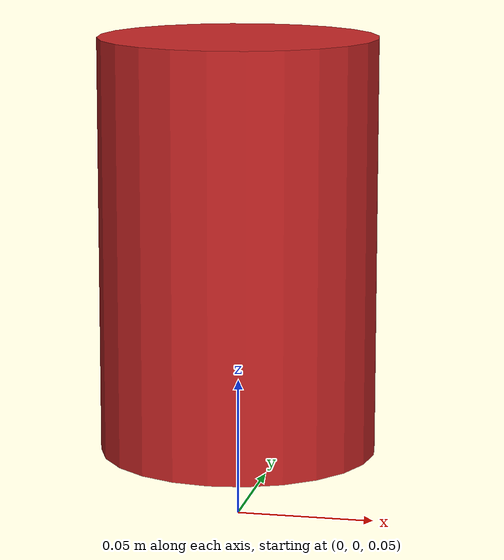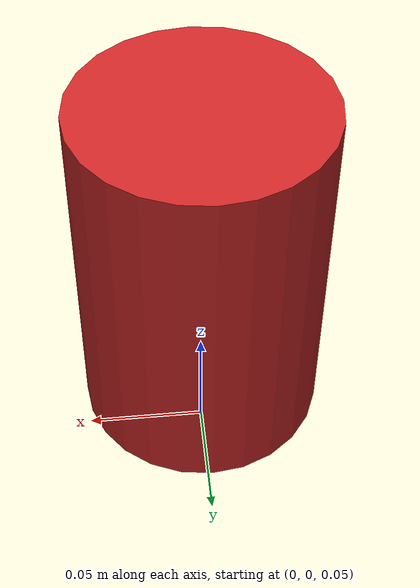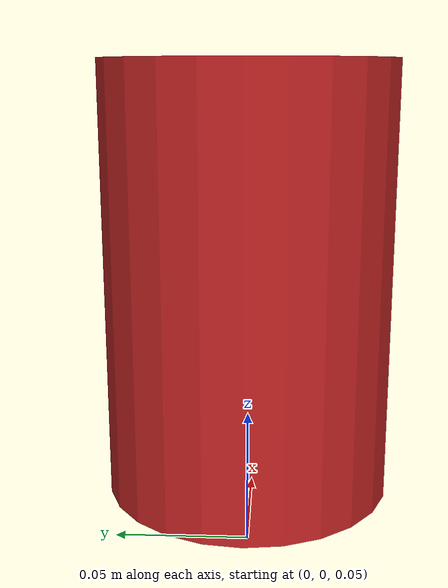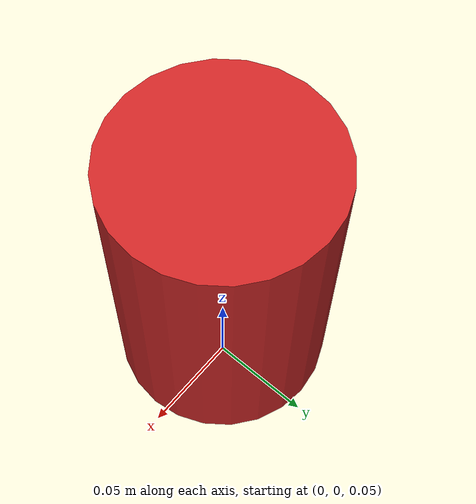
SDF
<sdf version='1.5'>
  <model name='snake'>

    <link name='base_link'>
      <pose>0 0 0.075 0 -0 0</pose>
      <inertial>
        <pose>0 0 0.075 0 -0 0</pose>
        <mass>0.1</mass>
        <inertia>
          <ixx>0.00025</ixx>
          <ixy>0</ixy>
          <ixz>0</ixz>
          <iyy>0.00025</iyy>
          <iyz>0</iyz>
          <izz>0.000125</izz>
        </inertia>
      </inertial>
      <collision name='base_link_collision'>
        <pose>0 0 0.075 0 -0 0</pose>
        <geometry>
            <cylinder>
            <length>0.15</length>
            <radius>0.05</radius>
          </cylinder>
        </geometry>
      </collision>
      <visual name='base_link_visual'>
        <pose>0 0 0.075 0 -0 0</pose>
        <geometry>
            <cylinder>
            <length>0.15</length>
            <radius>0.05</radius>
          </cylinder>
        </geometry>
        <material>
          <script>
            <uri>file://media/materials/scripts/gazebo.material</uri>
            <name>Gazebo/Red</name>
          </script>
        </material>
      </visual>
    </link>

    <link name='snake_body_1_aux'>
      <pose>0 0 0.075 0 -0 0</pose>
      <inertial>
        <pose>0 0 0.075 0 -0 0</pose>
        <mass>0.1</mass>
        <inertia>
          <ixx>0.00025</ixx>
          <ixy>0</ixy>
          <ixz>0</ixz>
          <iyy>0.00025</iyy>
          <iyz>0</iyz>
          <izz>0.000125</izz>
        </inertia>
      </inertial>
      <collision name='snake_body_1_aux_collision'>
        <pose>0 0 0.075 0 -0 0</pose>
        <geometry>
            <cylinder>
            <length>0.15</length>
            <radius>0.05</radius>
          </cylinder>
        </geometry>
      </collision>
      <visual name='snake_body_1_aux_visual'>
        <pose>0 0 0.075 0 -0 0</pose>
        <geometry>
            <cylinder>
            <length>0.15</length>
            <radius>0.05</radius>
          </cylinder>
        </geometry>
        <material>
          <script>
            <uri>file://media/materials/scripts/gazebo.material</uri>
            <name>Gazebo/Black</name>
          </script>
        </material>
      </visual>
    </link>

    <joint name='snake_body_1_aux_joint' type='revolute'>
      <child>snake_body_1_aux</child>
      <parent>base_link</parent>
      <axis>
        <xyz>1 0 0</xyz>
        <limit>
          <lower>-1.5708</lower>
          <upper>1.5708</upper>
          <effort>1.0</effort>
          <velocity>0.005</velocity>
        </limit>
      </axis>
    </joint>

    <link name='snake_body_1'>
      <pose>0 0 0.075 0 -0 0</pose>
      <inertial>
        <pose>0 0 0.075 0 -0 0</pose>
        <mass>0.1</mass>
        <inertia>
          <ixx>0.00025</ixx>
          <ixy>0</ixy>
          <ixz>0</ixz>
          <iyy>0.00025</iyy>
          <iyz>0</iyz>
          <izz>0.000125</izz>
        </inertia>
      </inertial>
      <collision name='snake_body_1_collision'>
        <pose>0 0 0.075 0 -0 0</pose>
        <geometry>
            <cylinder>
            <length>0.15</length>
            <radius>0.05</radius>
          </cylinder>
        </geometry>
      </collision>
      <visual name='snake_body_1_visual'>
        <pose>0 0 0.075 0 -0 0</pose>
        <geometry>
            <cylinder>
            <length>0.15</length>
            <radius>0.05</radius>
          </cylinder>
        </geometry>
        <material>
          <script>
            <uri>file://media/materials/scripts/gazebo.material</uri>
            <name>Gazebo/Green</name>
          </script>
        </material>
      </visual>
    </link>

    <joint name='snake_body_1_joint' type='revolute'>
      <child>snake_body_1</child>
      <parent>snake_body_1_aux</parent>
      <axis>
        <xyz>0 1 0</xyz>
        <limit>
          <lower>-1.5708</lower>
          <upper>1.5708</upper>
          <effort>1.0</effort>
          <velocity>0.005</velocity>
        </limit>
      </axis>
    </joint>

    </model>
</sdf>
